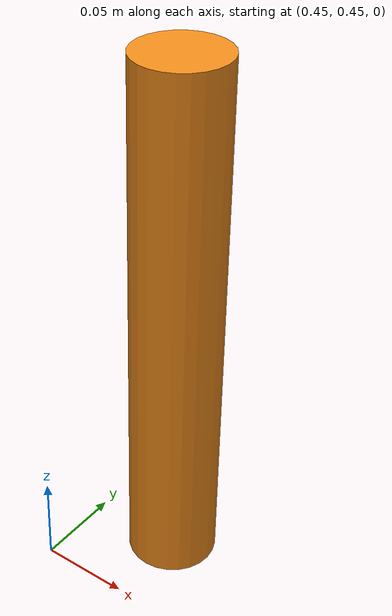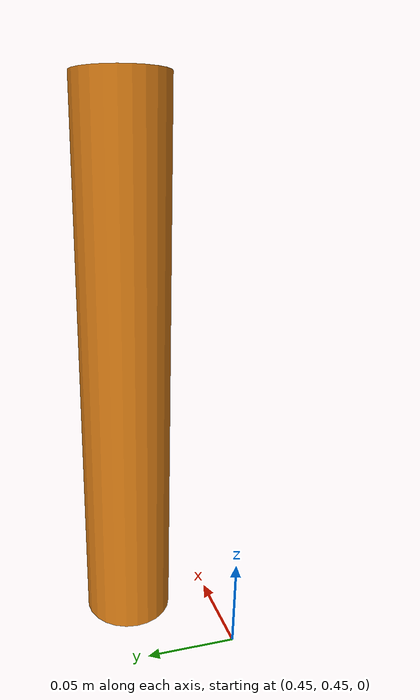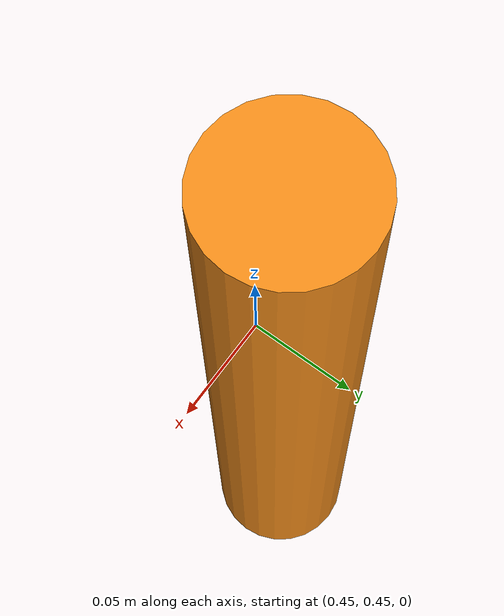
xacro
<?xml version="1.0"?>
<robot
    xmlns:xacro="http://www.ros.org/wiki/xacro" name="target_object" >
    <!-- Variables: -->
    <xacro:property name="position" value="0.5 0.5 0.15" />
    <xacro:property name="radius" value="0.025" />
    <xacro:property name="length" value="0.3" />
    <!-- Core: target location object -->
    <link name="core">
        <inertial>
            <origin xyz="${position}" rpy="0 0 0"/>
            <mass value="1"/>
            <inertia
                ixx="0.0" ixy="0.0" ixz="0.0"
                iyy="0.0" iyz="0.0"
                izz="0.0"/>
        </inertial>
        <visual>
            <origin xyz="${position}" />
            <geometry>
                <cylinder radius="${radius}" length="${length}"/>
            </geometry>
        </visual>
        <collision>
            <origin xyz="${position}" />
            <geometry>
                <cylinder radius="${radius}" length="${length}"/>
            </geometry>
        </collision>
    </link>
    <!-- Gazebo settings -->
    <gazebo reference="core">
        <gravity>0</gravity>
        <material>Gazebo/Orange</material>
    </gazebo>
</robot>
